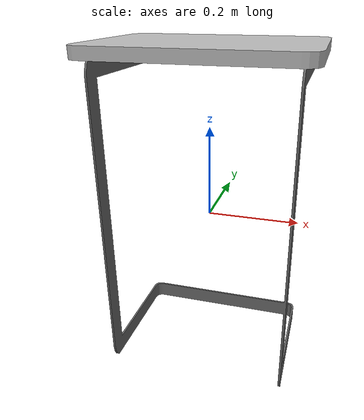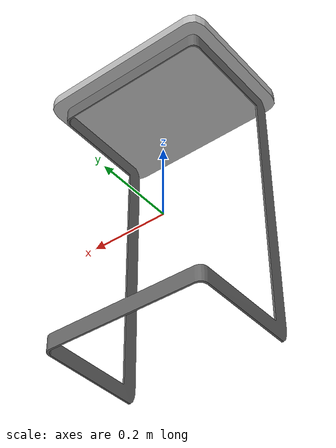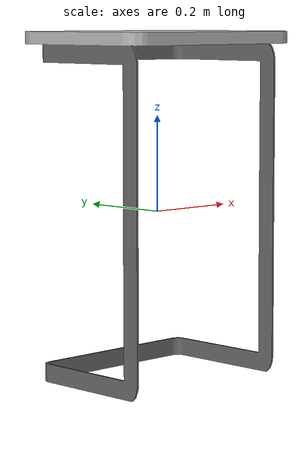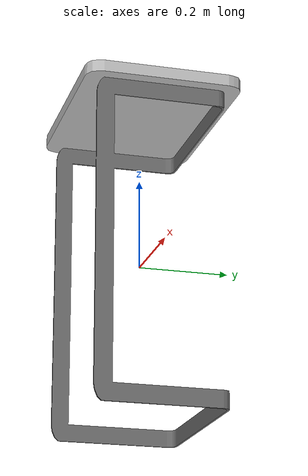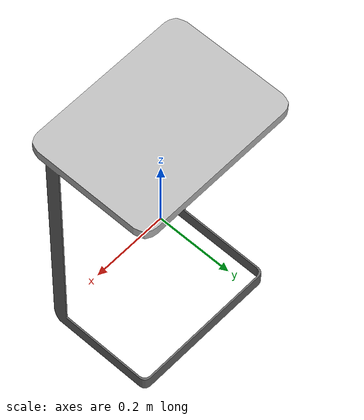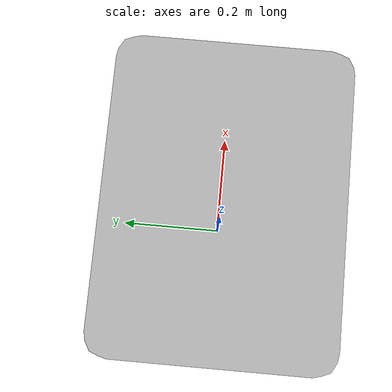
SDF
<?xml version='1.0'?>
<sdf version='1.5'>
    <model name="403_mini_table">
        <pose>0 0 0 0 0 0</pose>
        <static>false</static>
        <link name='model_body'>
            <visual name="visual">
                <geometry>
                    <mesh>
                        <uri>model://rs_gazebo/meshes/ss_hq4/403_mini_table/403_mini_table_visual.dae</uri>
                        <scale>1 1 1</scale>
                    </mesh>
                </geometry>
            </visual>

            <collision name="collision">
                <geometry>
                    <mesh>
                        <uri>model://rs_gazebo/meshes/ss_hq4/403_mini_table/403_mini_table_collision.stl</uri>
                        <scale>1 1 1</scale>
                    </mesh>
                </geometry>
            </collision>

            <inertial>
                <pose> 0 0 0 0 0 0</pose>
                <inertia>
                    <ixx>0.160766666667</ixx>
                    <ixy>0</ixy>
                    <ixz>0</ixz>
                    <iyy>0.214097916667</iyy>
                    <iyz>0</iyz>
                    <izz>0.188197916667</izz>
                </inertia>
                <mass>7.0</mass>
            </inertial>
        </link>
    </model>
</sdf>
